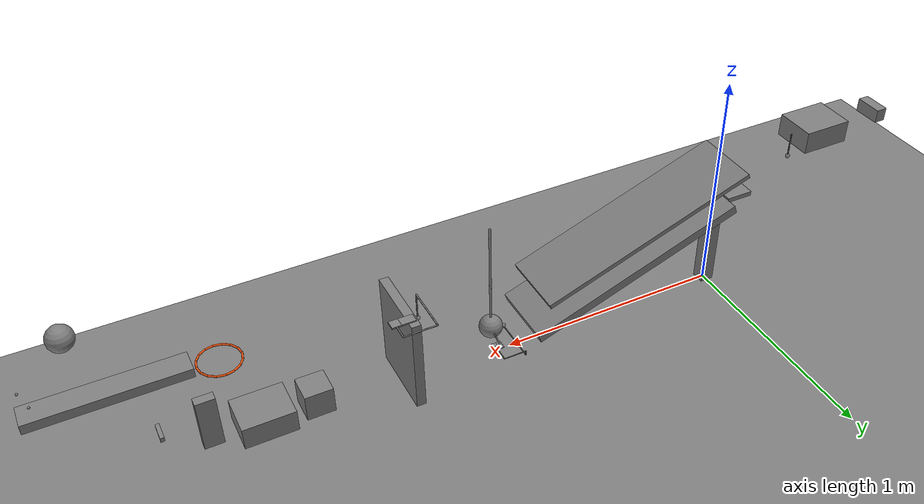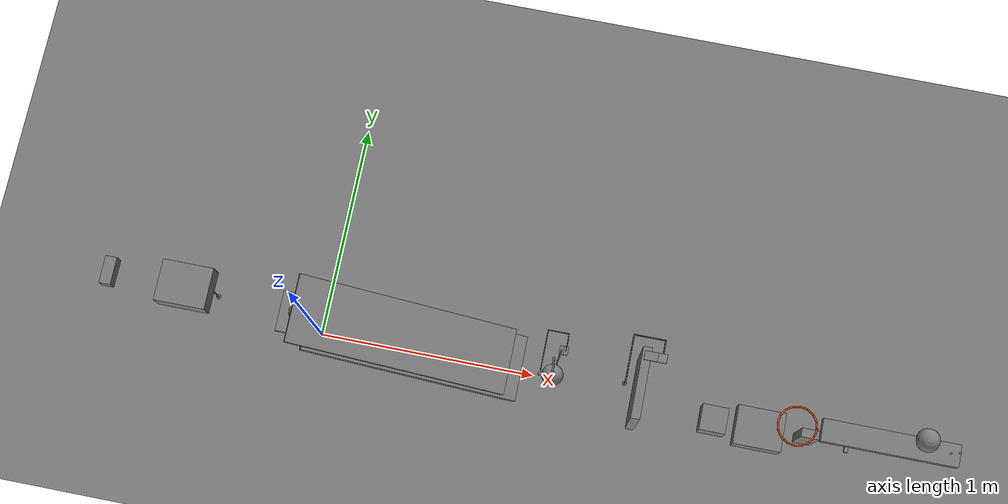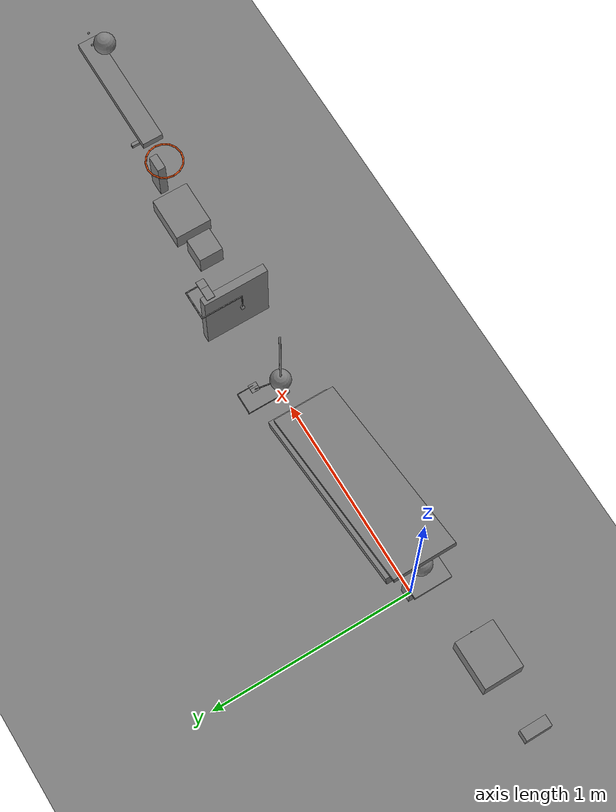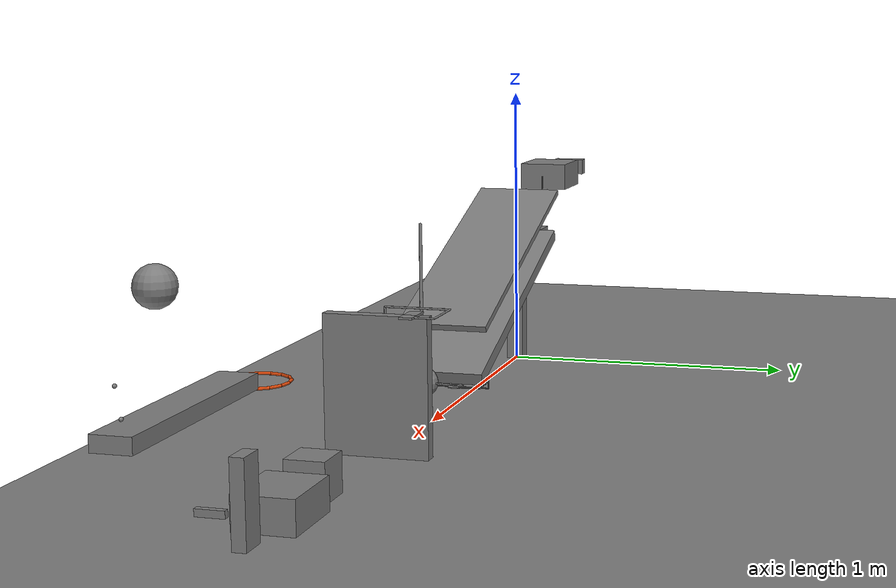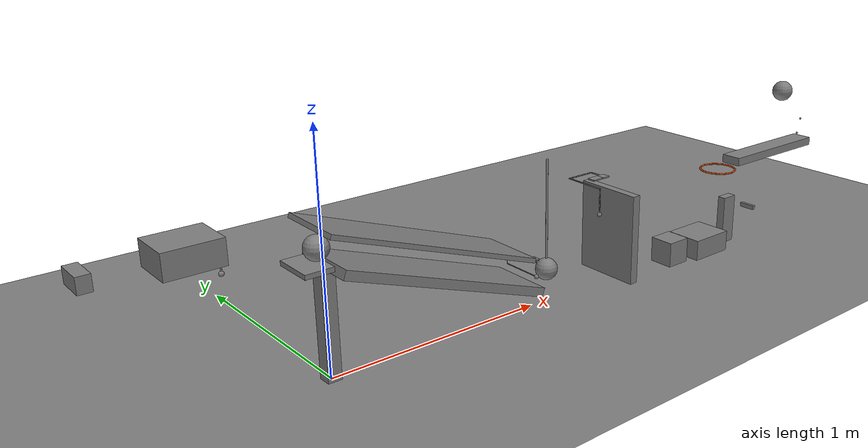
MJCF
<mujoco model="spring_and_gravity_cascade_with_pendulum_release">
  <compiler angle="radian"/>
  <option timestep="0.002"/>
  <worldbody>
    <geom name="floor" type="plane" size="8 8 0.1" friction="0.68 0.005 0.002"/>
    <body name="ramp1">
      <geom name="ramp1_deck" type="box" pos="0.469847 0 0.302216" size="0.5 0.15 0.02" euler="0 0.349067 0" friction="0.68 0.005 0.002" solref="0.01 0.690107"/>
      <geom name="ramp1_leg" type="box" pos="0 0 0.236614" size="0.03 0.03 0.236614" friction="0.68 0.005 0.002" solref="0.01 0.690107"/>
    </body>
    <body name="ramp cover">
      <geom name="ramp cover" type="box" pos="0.424016 0 0.458136" size="0.5 0.15 0.01" euler="0 0.349067 0" friction="0.68 0.005 0.002" solref="0.01 0.690107"/>
    </body>
    <body name="ball1 starting shelf">
      <geom name="ball1 starting shelf" type="box" pos="-0.063941 0 0.479005" size="0.06 0.09 0.01" friction="0.68 0.005 0.002" solref="0.01 0.690107"/>
    </body>
    <body name="cart1 spring pusher" pos="-0.838941 0 0.65">
      <joint name="pusher_track" type="slide" pos="0 0 0" axis="1 0 0" limited="true" range="0 0.5" stiffness="12" springref="0.8" damping="0.2"/>
      <geom name="cart1 spring pusher" type="box" pos="0 0 0" size="0.025 0.06 0.03" mass="0.1" friction="0.68 0.005 0.002" solref="0.01 0.690107"/>
    </body>
    <body name="cart1" pos="-0.503941 0 0.65">
      <joint name="cart1_track" type="slide" pos="0 0 0" axis="1 0 0" limited="true" range="-0.2 0.32" stiffness="18" springref="0" damping="0.2"/>
      <geom name="cart1" type="box" pos="0 0 0" size="0.11 0.09 0.05" mass="0.48" friction="0.68 0.005 0.002" solref="0.01 0.690107"/>
      <geom name="cart1 nose stem" type="capsule" size="0.003" fromto="0.12 0 0 0.12 0 -0.110995" mass="0.01" friction="0.68 0.005 0.002" solref="0.01 0.690107"/>
      <geom name="cart1 nose" type="sphere" pos="0.12 0 -0.110995" size="0.01" mass="0.01" friction="0.68 0.005 0.002" solref="0.01 0.690107"/>
    </body>
    <body name="ball1" pos="-0.023941 0 0.539005">
      <freejoint/>
      <geom name="ball1" type="sphere" pos="0 0 0" size="0.05" mass="0.2" condim="6" friction="0.68 0.005 0.002" solref="0.01 0.690107"/>
    </body>
    <body name="pendulum1" pos="1.08969 0 0.65">
      <joint name="pendulum1_hinge" type="hinge" pos="0 0 0" axis="0 1 0" limited="true" range="-0.785398 0" stiffness="3" springref="-0.698132" damping="0.04"/>
      <geom name="pendulum1" type="sphere" pos="0 0 -0.5" size="0.05" mass="0.285" friction="0.68 0.005 0.002" solref="0.01 0.690107"/>
      <geom name="pendulum rod" type="capsule" size="0.005" fromto="0 0 0 0 0 -0.45" mass="0.05" friction="0.68 0.005 0.002" solref="0.01 0.690107"/>
      <geom name="pendulum latch tooth" type="box" pos="0.02 0.12 -0.5" size="0.01 0.02 0.0015" mass="0.005" friction="0.68 0.005 0.002" solref="0.01 0.690107"/>
      <geom name="pendulum tooth link" type="capsule" size="0.003" fromto="0 0 -0.5 0.02 0.12 -0.5" mass="0.01" friction="0.68 0.005 0.002" solref="0.01 0.690107"/>
    </body>
    <body name="pendulum release latch" pos="1.12969 0.12 0.15">
      <joint name="pendulum_release_track" type="slide" pos="0 0 0" axis="0 0 1" limited="true" range="-0.025 0" stiffness="20" springref="0.02" damping="0.2"/>
      <geom name="pendulum release latch" type="box" pos="0 0 0" size="0.01 0.02 0.0015" mass="0.01" friction="0.68 0.005 0.002" solref="0.01 0.690107"/>
      <geom name="pendulum latch outer link" type="capsule" size="0.002" fromto="0 0 0 0 0.08 0" mass="0.002" friction="0.68 0.005 0.002" solref="0.01 0.690107"/>
      <geom name="pendulum latch rear link" type="capsule" size="0.002" fromto="0 0.08 0 -0.097693 0.08 0" mass="0.002" friction="0.68 0.005 0.002" solref="0.01 0.690107"/>
      <geom name="pendulum latch vertical link" type="capsule" size="0.002" fromto="-0.097693 0.08 0 -0.097693 0.08 -0.022" mass="0.002" friction="0.68 0.005 0.002" solref="0.01 0.690107"/>
      <geom name="pendulum latch pickup link" type="capsule" size="0.002" fromto="-0.097693 0.08 -0.022 -0.097693 -0.12 -0.022" mass="0.002" friction="0.68 0.005 0.002" solref="0.01 0.690107"/>
      <geom name="pendulum release pickup" type="sphere" pos="-0.097693 -0.12 -0.022" size="0.01" mass="0.005" friction="0.68 0.005 0.002" solref="0.01 0.690107"/>
    </body>
    <body name="door1" pos="1.48109 -0.16 0.23">
      <joint name="door1_hinge" type="hinge" pos="0 0 0" axis="0 0 1" limited="true" range="-1.22173 0" stiffness="2.5" springref="-1.22173" damping="0.04"/>
      <geom name="door1" type="box" pos="0 0.16 0" size="0.02 0.16 0.21" mass="0.445" friction="0.68 0.005 0.002" solref="0.01 0.690107"/>
      <geom name="door latch tooth" type="box" pos="0.02 0.28 0.22" size="0.03 0.02 0.003" mass="0.005" friction="0.68 0.005 0.002" solref="0.01 0.690107"/>
    </body>
    <body name="door release latch" pos="1.55109 0.12 0.45">
      <joint name="door_release_track" type="slide" pos="0 0 0" axis="0 0 1" limited="true" range="0 0.04" damping="0.2"/>
      <geom name="door release latch" type="box" pos="0 0 0" size="0.02 0.02 0.003" mass="0.02" friction="0.68 0.005 0.002" solref="0.01 0.690107"/>
      <geom name="latch outer link" type="capsule" size="0.003" fromto="0 0 0 0 0.08 0" mass="0.003" friction="0.68 0.005 0.002" solref="0.01 0.690107"/>
      <geom name="latch overhead link" type="capsule" size="0.003" fromto="0 0.08 0 -0.14 0.08 0" mass="0.003" friction="0.68 0.005 0.002" solref="0.01 0.690107"/>
      <geom name="latch cross link" type="capsule" size="0.003" fromto="-0.14 0.08 0 -0.14 -0.12 0" mass="0.003" friction="0.68 0.005 0.002" solref="0.01 0.690107"/>
      <geom name="latch pickup link" type="capsule" size="0.003" fromto="-0.14 -0.12 0 -0.14 -0.12 -0.123022" mass="0.003" friction="0.68 0.005 0.002" solref="0.01 0.690107"/>
      <geom name="latch pickup" type="sphere" pos="-0.14 -0.12 -0.123022" size="0.01" mass="0.005" friction="0.68 0.005 0.002" solref="0.01 0.690107"/>
    </body>
    <body name="block1" pos="1.84663 -0.050553 0.06">
      <freejoint/>
      <geom name="block1" type="box" pos="0 0 0" size="0.06 0.06 0.06" mass="0.35" friction="0.68 0.005 0.002" solref="0.01 0.690107"/>
    </body>
    <body name="domino1" pos="2.26663 -0.050553 0.12">
      <freejoint/>
      <geom name="domino1" type="box" pos="0 0 0" size="0.04 0.02 0.12" mass="0.25" friction="0.68 0.005 0.002" solref="0.01 0.690107"/>
    </body>
    <body name="lever release latch" pos="2.44663 -0.050553 0.145385">
      <joint name="lever_release_track" type="slide" pos="0 0 0" axis="1 0 0" limited="true" range="0 0.12" damping="0.2"/>
      <geom name="lever release latch" type="box" pos="0 0 0" size="0.008 0.04 0.01" mass="0.02" friction="0.68 0.005 0.002" solref="0.01 0.690107"/>
    </body>
    <body name="lever1" pos="2.57931 -0.050553 0.425192">
      <joint name="lever1_hinge" type="hinge" pos="0 0 0" axis="0 1 0" limited="true" range="-1.8326 -1.0472" stiffness="2" springref="-1.8326" damping="0.04"/>
      <geom name="lever1" type="box" pos="0 0 0" size="0.3 0.05 0.02" mass="0.49" friction="0.68 0.005 0.002" solref="0.01 0.690107"/>
      <geom name="lever cradle support" type="sphere" pos="0.252372 0 0.0425" size="0.005" mass="0.005" friction="0.68 0.005 0.002" solref="0.01 0.690107"/>
      <geom name="lever cradle back" type="sphere" pos="0.272501 0 0.117636" size="0.005" mass="0.005" friction="0.68 0.005 0.002" solref="0.01 0.690107"/>
    </body>
    <body name="ball2" pos="2.66868 -0.050553 0.72">
      <freejoint/>
      <geom name="ball2" type="sphere" pos="0 0 0" size="0.05" mass="0.2" condim="6" friction="0.68 0.005 0.002" solref="0.01 0.690107"/>
    </body>
    <body name="ring1">
      <geom name="ring1_rim00" type="capsule" size="0.004" fromto="2.26495 -0.050553 0.4 2.25843 -0.017778 0.4" friction="0.68 0.005 0.002" solref="0.01 0.690107" rgba="0.9 0.3 0.05 1"/>
      <geom name="ring1_rim01" type="capsule" size="0.004" fromto="2.25843 -0.017778 0.4 2.23987 0.010008 0.4" friction="0.68 0.005 0.002" solref="0.01 0.690107" rgba="0.9 0.3 0.05 1"/>
      <geom name="ring1_rim02" type="capsule" size="0.004" fromto="2.23987 0.010008 0.4 2.21208 0.028574 0.4" friction="0.68 0.005 0.002" solref="0.01 0.690107" rgba="0.9 0.3 0.05 1"/>
      <geom name="ring1_rim03" type="capsule" size="0.004" fromto="2.21208 0.028574 0.4 2.17931 0.035093 0.4" friction="0.68 0.005 0.002" solref="0.01 0.690107" rgba="0.9 0.3 0.05 1"/>
      <geom name="ring1_rim04" type="capsule" size="0.004" fromto="2.17931 0.035093 0.4 2.14653 0.028574 0.4" friction="0.68 0.005 0.002" solref="0.01 0.690107" rgba="0.9 0.3 0.05 1"/>
      <geom name="ring1_rim05" type="capsule" size="0.004" fromto="2.14653 0.028574 0.4 2.11875 0.010008 0.4" friction="0.68 0.005 0.002" solref="0.01 0.690107" rgba="0.9 0.3 0.05 1"/>
      <geom name="ring1_rim06" type="capsule" size="0.004" fromto="2.11875 0.010008 0.4 2.10018 -0.017778 0.4" friction="0.68 0.005 0.002" solref="0.01 0.690107" rgba="0.9 0.3 0.05 1"/>
      <geom name="ring1_rim07" type="capsule" size="0.004" fromto="2.10018 -0.017778 0.4 2.09366 -0.050553 0.4" friction="0.68 0.005 0.002" solref="0.01 0.690107" rgba="0.9 0.3 0.05 1"/>
      <geom name="ring1_rim08" type="capsule" size="0.004" fromto="2.09366 -0.050553 0.4 2.10018 -0.083328 0.4" friction="0.68 0.005 0.002" solref="0.01 0.690107" rgba="0.9 0.3 0.05 1"/>
      <geom name="ring1_rim09" type="capsule" size="0.004" fromto="2.10018 -0.083328 0.4 2.11875 -0.111114 0.4" friction="0.68 0.005 0.002" solref="0.01 0.690107" rgba="0.9 0.3 0.05 1"/>
      <geom name="ring1_rim10" type="capsule" size="0.004" fromto="2.11875 -0.111114 0.4 2.14653 -0.12968 0.4" friction="0.68 0.005 0.002" solref="0.01 0.690107" rgba="0.9 0.3 0.05 1"/>
      <geom name="ring1_rim11" type="capsule" size="0.004" fromto="2.14653 -0.12968 0.4 2.17931 -0.136199 0.4" friction="0.68 0.005 0.002" solref="0.01 0.690107" rgba="0.9 0.3 0.05 1"/>
      <geom name="ring1_rim12" type="capsule" size="0.004" fromto="2.17931 -0.136199 0.4 2.21208 -0.12968 0.4" friction="0.68 0.005 0.002" solref="0.01 0.690107" rgba="0.9 0.3 0.05 1"/>
      <geom name="ring1_rim13" type="capsule" size="0.004" fromto="2.21208 -0.12968 0.4 2.23987 -0.111114 0.4" friction="0.68 0.005 0.002" solref="0.01 0.690107" rgba="0.9 0.3 0.05 1"/>
      <geom name="ring1_rim14" type="capsule" size="0.004" fromto="2.23987 -0.111114 0.4 2.25843 -0.083328 0.4" friction="0.68 0.005 0.002" solref="0.01 0.690107" rgba="0.9 0.3 0.05 1"/>
      <geom name="ring1_rim15" type="capsule" size="0.004" fromto="2.25843 -0.083328 0.4 2.26495 -0.050553 0.4" friction="0.68 0.005 0.002" solref="0.01 0.690107" rgba="0.9 0.3 0.05 1"/>
    </body>
    <body name="cart2" pos="2.05931 -0.050553 0.05">
      <joint name="cart2_track" type="slide" pos="0 0 0" axis="1 0 0" limited="true" range="-0.5 0" damping="0.2"/>
      <geom name="cart2" type="box" pos="0 0 0" size="0.11 0.09 0.05" mass="0.5" friction="0.68 0.005 0.002" solref="0.01 0.690107"/>
    </body>
  </worldbody>
  <keyframe>
    <key name="start" qpos="0 -0.2 -0.023941 0 0.539005 1 0 0 0 0 0 0 0 1.84663 -0.050553 0.06 1 0 0 0 2.26663 -0.050553 0.12 1 0 0 0 0 -1.0472 2.66868 -0.050553 0.72 1 0 0 0 0" qvel="0 0 0 0 0 0 0 0 0 0 0 0 0 0 0 0 0 0 0 0 0 0 0 0 0 0 0 0 0 0 0 0 0"/>
  </keyframe>
</mujoco>
